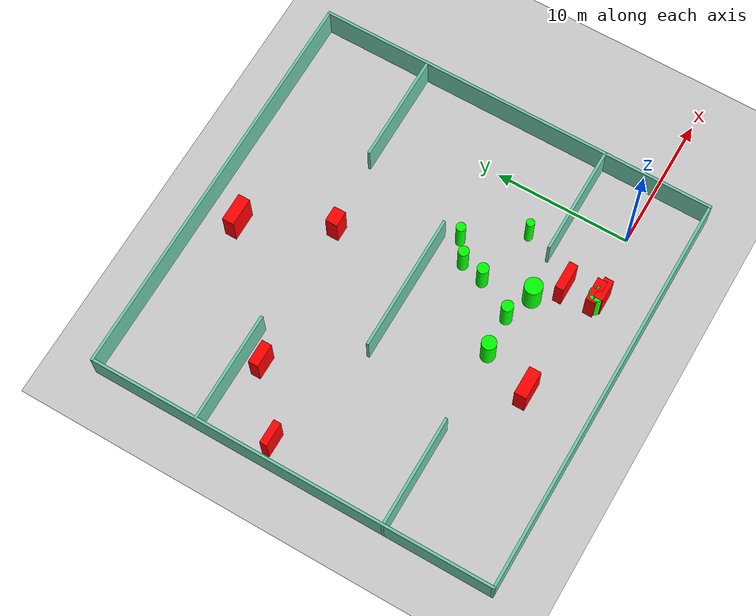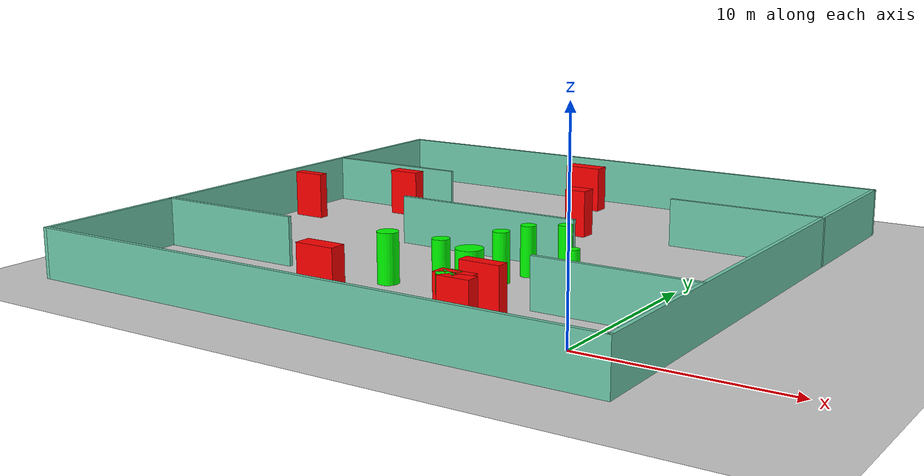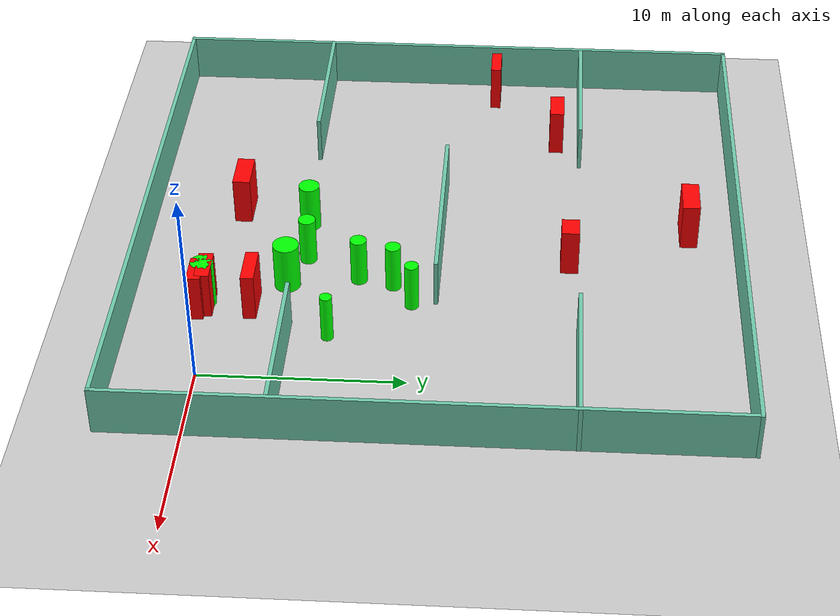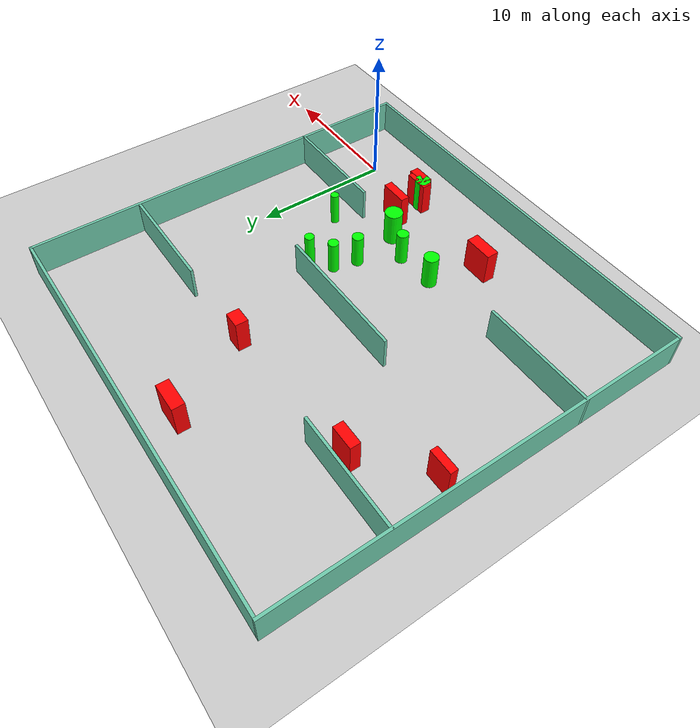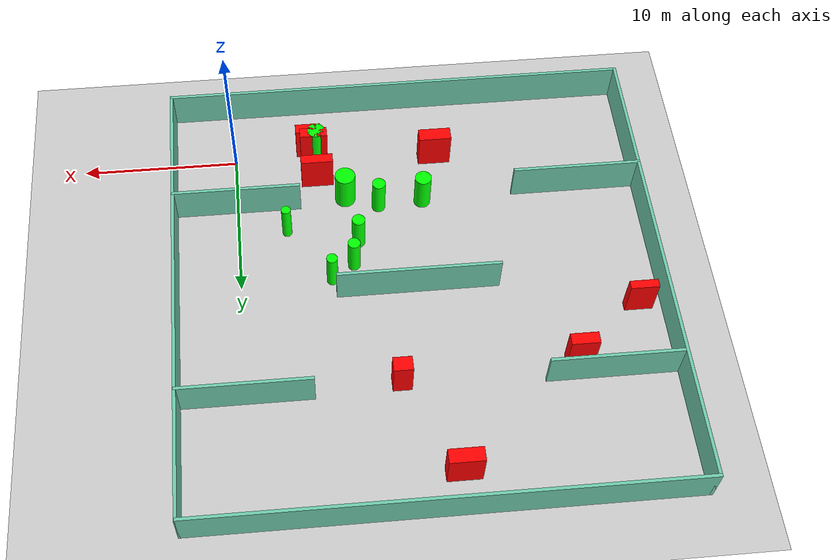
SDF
<sdf version="1.7">
 <world name="default">
  <light name="sun" type="directional">
   <pose>0 0 10 0 -0 0</pose>
   <diffuse>0.8 0.8 0.8 1</diffuse>
   <specular>0.2 0.2 0.2 1</specular>
   <attenuation>
    <range>1000</range>
    <constant>0.9</constant>
    <linear>0.01</linear>
    <quadratic>0.001</quadratic>
   </attenuation>
   <direction>-0.5 0.1 -0.9</direction>
   <spot><inner_angle>0</inner_angle><outer_angle>0</outer_angle><falloff>0</falloff></spot>
  </light>
  <model name="ground_plane">
   <static>1</static>
   <link name="link">
    <collision name="collision">
     <geometry><plane><normal>0 0 1</normal><size>100 100</size></plane></geometry>
     <surface>
      <contact><collide_bitmask>65535</collide_bitmask></contact>
      <friction><ode><mu>100</mu><mu2>50</mu2></ode></friction>
     </surface>
    </collision>
    <visual name="visual">
     <cast_shadows>0</cast_shadows>
     <geometry><plane><normal>0 0 1</normal><size>100 100</size></plane></geometry>
     <material>
      <script><uri>file://media/materials/scripts/gazebo.material</uri><name>Gazebo/Grey</name></script>
     </material>
    </visual>
   </link>
  </model>
  <gravity>0 0 -9.8</gravity>
  <magnetic_field>6e-06 2.3e-05 -4.2e-05</magnetic_field>
  <atmosphere type="adiabatic"/>
  <physics type="ode">
   <max_step_size>0.001</max_step_size>
   <real_time_factor>1</real_time_factor>
   <real_time_update_rate>1000</real_time_update_rate>
  </physics>
  <scene><ambient>0.4 0.4 0.4 1</ambient><background>0.7 0.7 0.7 1</background><shadows>1</shadows></scene>
  <spherical_coordinates>
   <surface_model>EARTH_WGS84</surface_model>
   <latitude_deg>0</latitude_deg>
   <longitude_deg>0</longitude_deg>
   <elevation>0</elevation>
   <heading_deg>0</heading_deg>
  </spherical_coordinates>
  <model name="my_base_walls">
   <link name="Wall_10">
    <collision name="Wall_10_Collision">
     <geometry><box><size>8.2 0.2 2.5</size></box></geometry>
     <pose>0 0 1.25 0 -0 0</pose>
    </collision>
    <visual name="Wall_10_Visual">
     <pose>0 0 1.25 0 -0 0</pose>
     <geometry><box><size>8.2 0.2 2.5</size></box></geometry>
     <material>
      <script><uri>file://media/materials/scripts/gazebo.material</uri><name>Gazebo/Grey</name></script>
      <ambient>0.435294 0.796078 0.67451 1</ambient>
     </material>
     <meta><layer>0</layer></meta>
    </visual>
    <pose>-11 -7 0 0 -0 0</pose>
   </link>
   <link name="Wall_12">
    <collision name="Wall_12_Collision">
     <geometry><box><size>8.2 0.2 2.5</size></box></geometry>
     <pose>0 0 1.25 0 -0 0</pose>
    </collision>
    <visual name="Wall_12_Visual">
     <pose>0 0 1.25 0 -0 0</pose>
     <geometry><box><size>8.2 0.2 2.5</size></box></geometry>
     <material>
      <script><uri>file://media/materials/scripts/gazebo.material</uri><name>Gazebo/Grey</name></script>
      <ambient>0.435294 0.796078 0.67451 1</ambient>
     </material>
     <meta><layer>0</layer></meta>
    </visual>
    <pose>-11 7 0 0 -0 0</pose>
   </link>
   <link name="Wall_14">
    <collision name="Wall_14_Collision">
     <geometry><box><size>8.2 0.2 2.5</size></box></geometry>
     <pose>0 0 1.25 0 -0 0</pose>
    </collision>
    <visual name="Wall_14_Visual">
     <pose>0 0 1.25 0 -0 0</pose>
     <geometry><box><size>8.2 0.2 2.5</size></box></geometry>
     <material>
      <script><uri>file://media/materials/scripts/gazebo.material</uri><name>Gazebo/Grey</name></script>
      <ambient>0.435294 0.796078 0.67451 1</ambient>
     </material>
     <meta><layer>0</layer></meta>
    </visual>
    <pose>11 7 0 0 -0 3.14159</pose>
   </link>
   <link name="Wall_16">
    <collision name="Wall_16_Collision">
     <geometry><box><size>10.2 0.2 2.5</size></box></geometry>
     <pose>0 0 1.25 0 -0 0</pose>
    </collision>
    <visual name="Wall_16_Visual">
     <pose>0 0 1.25 0 -0 0</pose>
     <geometry><box><size>10.2 0.2 2.5</size></box></geometry>
     <material>
      <script><uri>file://media/materials/scripts/gazebo.material</uri><name>Gazebo/Grey</name></script>
      <ambient>0.435294 0.796078 0.67451 1</ambient>
     </material>
     <meta><layer>0</layer></meta>
    </visual>
    <pose>0 0 0 0 -0 3.14159</pose>
   </link>
   <link name="Wall_2">
    <collision name="Wall_2_Collision">
     <geometry><box><size>30.2 0.2 2.5</size></box></geometry>
     <pose>0 0 1.25 0 -0 0</pose>
    </collision>
    <visual name="Wall_2_Visual">
     <pose>0 0 1.25 0 -0 0</pose>
     <geometry><box><size>30.2 0.2 2.5</size></box></geometry>
     <material>
      <script><uri>file://media/materials/scripts/gazebo.material</uri><name>Gazebo/Grey</name></script>
      <ambient>0.435294 0.796078 0.67451 1</ambient>
     </material>
     <meta><layer>0</layer></meta>
    </visual>
    <pose>0 -15 0 0 -0 3.14159</pose>
   </link>
   <link name="Wall_3">
    <collision name="Wall_3_Collision">
     <geometry><box><size>30.2 0.2 2.5</size></box></geometry>
     <pose>0 0 1.25 0 -0 0</pose>
    </collision>
    <visual name="Wall_3_Visual">
     <pose>0 0 1.25 0 -0 0</pose>
     <geometry><box><size>30.2 0.2 2.5</size></box></geometry>
     <material>
      <script><uri>file://media/materials/scripts/gazebo.material</uri><name>Gazebo/Grey</name></script>
      <ambient>0.435294 0.796078 0.67451 1</ambient>
     </material>
     <meta><layer>0</layer></meta>
    </visual>
    <pose>-15 0 0 0 -0 1.5708</pose>
   </link>
   <link name="Wall_4">
    <collision name="Wall_4_Collision">
     <geometry><box><size>30.2 0.2 2.5</size></box></geometry>
     <pose>0 0 1.25 0 -0 0</pose>
    </collision>
    <visual name="Wall_4_Visual">
     <pose>0 0 1.25 0 -0 0</pose>
     <geometry><box><size>30.2 0.2 2.5</size></box></geometry>
     <material>
      <script><uri>file://media/materials/scripts/gazebo.material</uri><name>Gazebo/Grey</name></script>
      <ambient>0.435294 0.796078 0.67451 1</ambient>
     </material>
     <meta><layer>0</layer></meta>
    </visual>
    <pose>0 15 0 0 -0 0</pose>
   </link>
   <link name="Wall_6">
    <collision name="Wall_6_Collision">
     <geometry><box><size>30.2 0.2 2.5</size></box></geometry>
     <pose>0 0 1.25 0 -0 0</pose>
    </collision>
    <visual name="Wall_6_Visual">
     <pose>0 0 1.25 0 -0 0</pose>
     <geometry><box><size>30.2 0.2 2.5</size></box></geometry>
     <material>
      <script><uri>file://media/materials/scripts/gazebo.material</uri><name>Gazebo/Grey</name></script>
      <ambient>0.435294 0.796078 0.67451 1</ambient>
     </material>
     <meta><layer>0</layer></meta>
    </visual>
    <pose>15 0 0 0 -0 1.5708</pose>
   </link>
   <link name="Wall_8">
    <collision name="Wall_8_Collision">
     <geometry><box><size>8.2 0.2 2.5</size></box></geometry>
     <pose>0 0 1.25 0 -0 0</pose>
    </collision>
    <visual name="Wall_8_Visual">
     <pose>0 0 1.25 0 -0 0</pose>
     <geometry><box><size>8.2 0.2 2.5</size></box></geometry>
     <material>
      <script><uri>file://media/materials/scripts/gazebo.material</uri><name>Gazebo/Grey</name></script>
      <ambient>0.435294 0.796078 0.67451 1</ambient>
     </material>
     <meta><layer>0</layer></meta>
    </visual>
    <pose>11 -7 0 0 -0 3.14159</pose>
   </link>
   <static>1</static>
   <pose>-11 11 0 0 -0 0</pose>
  </model>
  <model name="cylinder1">
   <static>1</static>
   <link name="link">
    <inertial>
     <mass>1</mass>
     <inertia><ixx>0.5</ixx><ixy>0</ixy><ixz>0</ixz><iyy>0.5</iyy><iyz>0</iyz><izz>1</izz></inertia>
    </inertial>
    <collision name="collision">
     <geometry><cylinder><radius>0.6483618482873639</radius><length>2.5</length></cylinder></geometry>
    </collision>
    <visual name="visual">
     <geometry><cylinder><radius>0.6483618482873639</radius><length>2.5</length></cylinder></geometry>
     <material>
      <ambient>0 1 0 1</ambient>
      <diffuse>0 1 0 1</diffuse>
      <specular>0.1 0.1 0.1 1</specular>
      <emissive>0 0 0 0</emissive>
     </material>
    </visual>
   </link>
   <pose>-7.032186113654991 3.545586968824119 1.25 0 0 0</pose>
  </model>
  <model name="cylinder2">
   <static>1</static>
   <link name="link">
    <inertial>
     <mass>1</mass>
     <inertia><ixx>0.5</ixx><ixy>0</ixy><ixz>0</ixz><iyy>0.5</iyy><iyz>0</iyz><izz>1</izz></inertia>
    </inertial>
    <collision name="collision">
     <geometry><cylinder><radius>0.4277646676338748</radius><length>2.5</length></cylinder></geometry>
    </collision>
    <visual name="visual">
     <geometry><cylinder><radius>0.4277646676338748</radius><length>2.5</length></cylinder></geometry>
     <material>
      <ambient>0 1 0 1</ambient>
      <diffuse>0 1 0 1</diffuse>
      <specular>0.1 0.1 0.1 1</specular>
      <emissive>0 0 0 0</emissive>
     </material>
    </visual>
   </link>
   <pose>-9.138433999210811 4.358889129627803 1.25 0 0 0</pose>
  </model>
  <model name="cylinder3">
   <static>1</static>
   <link name="link">
    <inertial>
     <mass>1</mass>
     <inertia><ixx>0.5</ixx><ixy>0</ixy><ixz>0</ixz><iyy>0.5</iyy><iyz>0</iyz><izz>1</izz></inertia>
    </inertial>
    <collision name="collision">
     <geometry><cylinder><radius>0.41382563143695394</radius><length>2.5</length></cylinder></geometry>
    </collision>
    <visual name="visual">
     <geometry><cylinder><radius>0.41382563143695394</radius><length>2.5</length></cylinder></geometry>
     <material>
      <ambient>0 1 0 1</ambient>
      <diffuse>0 1 0 1</diffuse>
      <specular>0.1 0.1 0.1 1</specular>
      <emissive>0 0 0 0</emissive>
     </material>
    </visual>
   </link>
   <pose>-7.60329394728371 7.069213149980831 1.25 0 0 0</pose>
  </model>
  <model name="cylinder4">
   <static>1</static>
   <link name="link">
    <inertial>
     <mass>1</mass>
     <inertia><ixx>0.5</ixx><ixy>0</ixy><ixz>0</ixz><iyy>0.5</iyy><iyz>0</iyz><izz>1</izz></inertia>
    </inertial>
    <collision name="collision">
     <geometry><cylinder><radius>0.38593892274602676</radius><length>2.5</length></cylinder></geometry>
    </collision>
    <visual name="visual">
     <geometry><cylinder><radius>0.38593892274602676</radius><length>2.5</length></cylinder></geometry>
     <material>
      <ambient>0 1 0 1</ambient>
      <diffuse>0 1 0 1</diffuse>
      <specular>0.1 0.1 0.1 1</specular>
      <emissive>0 0 0 0</emissive>
     </material>
    </visual>
   </link>
   <pose>-7.173091614113247 8.80729453335414 1.25 0 0 0</pose>
  </model>
  <model name="cylinder5">
   <static>1</static>
   <link name="link">
    <inertial>
     <mass>1</mass>
     <inertia><ixx>0.5</ixx><ixy>0</ixy><ixz>0</ixz><iyy>0.5</iyy><iyz>0</iyz><izz>1</izz></inertia>
    </inertial>
    <collision name="collision">
     <geometry><cylinder><radius>0.5276853958130514</radius><length>2.5</length></cylinder></geometry>
    </collision>
    <visual name="visual">
     <geometry><cylinder><radius>0.5276853958130514</radius><length>2.5</length></cylinder></geometry>
     <material>
      <ambient>0 1 0 1</ambient>
      <diffuse>0 1 0 1</diffuse>
      <specular>0.1 0.1 0.1 1</specular>
      <emissive>0 0 0 0</emissive>
     </material>
    </visual>
   </link>
   <pose>-12.013312053575762 4.146014832261969 1.25 0 0 0</pose>
  </model>
  <model name="cylinder6">
   <static>1</static>
   <link name="link">
    <inertial>
     <mass>1</mass>
     <inertia><ixx>0.5</ixx><ixy>0</ixy><ixz>0</ixz><iyy>0.5</iyy><iyz>0</iyz><izz>1</izz></inertia>
    </inertial>
    <collision name="collision">
     <geometry><cylinder><radius>0.345755966108301</radius><length>2.5</length></cylinder></geometry>
    </collision>
    <visual name="visual">
     <geometry><cylinder><radius>0.345755966108301</radius><length>2.5</length></cylinder></geometry>
     <material>
      <ambient>0 1 0 1</ambient>
      <diffuse>0 1 0 1</diffuse>
      <specular>0.1 0.1 0.1 1</specular>
      <emissive>0 0 0 0</emissive>
     </material>
    </visual>
   </link>
   <pose>-5.725957438023681 9.823209506173406 1.25 0 0 0</pose>
  </model>
  <model name="cylinder7">
   <static>1</static>
   <link name="link">
    <inertial>
     <mass>1</mass>
     <inertia><ixx>0.5</ixx><ixy>0</ixy><ixz>0</ixz><iyy>0.5</iyy><iyz>0</iyz><izz>1</izz></inertia>
    </inertial>
    <collision name="collision">
     <geometry><cylinder><radius>0.30111855187231834</radius><length>2.5</length></cylinder></geometry>
    </collision>
    <visual name="visual">
     <geometry><cylinder><radius>0.30111855187231834</radius><length>2.5</length></cylinder></geometry>
     <material>
      <ambient>0 1 0 1</ambient>
      <diffuse>0 1 0 1</diffuse>
      <specular>0.1 0.1 0.1 1</specular>
      <emissive>0 0 0 0</emissive>
     </material>
    </visual>
   </link>
   <pose>-3.1039053392761353 5.930566492357592 1.25 0 0 0</pose>
  </model>
  <model name="cylinder8">
   <static>1</static>
   <link name="link">
    <inertial>
     <mass>1</mass>
     <inertia><ixx>0.5</ixx><ixy>0</ixy><ixz>0</ixz><iyy>0.5</iyy><iyz>0</iyz><izz>1</izz></inertia>
    </inertial>
    <collision name="collision">
     <geometry><cylinder><radius>0.5674701827617236</radius><length>2.5</length></cylinder></geometry>
    </collision>
    <visual name="visual">
     <geometry><cylinder><radius>0.5674701827617236</radius><length>2.5</length></cylinder></geometry>
     <material>
      <ambient>0 1 0 1</ambient>
      <diffuse>0 1 0 1</diffuse>
      <specular>0.1 0.1 0.1 1</specular>
      <emissive>0 0 0 0</emissive>
     </material>
    </visual>
   </link>
   <pose>-5.426285387211063 -0.34963584662079095 1.25 0 0 0</pose>
  </model>
  <model name="box1">
   <static>1</static>
   <link name="link">
    <inertial>
     <mass>1</mass>
     <inertia><ixx>0.083</ixx><ixy>0</ixy><ixz>0</ixz><iyy>0.083</iyy><iyz>0</iyz><izz>0.083</izz></inertia>
    </inertial>
    <collision name="collision">
     <geometry><box><size>1.7298385164994765 0.7341490961737658 2.5</size></box></geometry>
    </collision>
    <visual name="visual">
     <geometry><box><size>1.7298385164994765 0.7341490961737658 2.5</size></box></geometry>
     <material>
      <ambient>1 0 0 1</ambient>
      <diffuse>1 0 0 1</diffuse>
      <specular>0.1 0.1 0.1 1</specular>
      <emissive>0 0 0 0</emissive>
     </material>
    </visual>
    <sensor name="my_contact" type="contact">
     <contact><collision>box_collision</collision><topic>__default_topic__</topic></contact>
    </sensor>
   </link>
   <pose>-20.175378955881747 16.744653255164145 1.25 0 0 0</pose>
  </model>
  <model name="box2">
   <static>1</static>
   <link name="link">
    <inertial>
     <mass>1</mass>
     <inertia><ixx>0.083</ixx><ixy>0</ixy><ixz>0</ixz><iyy>0.083</iyy><iyz>0</iyz><izz>0.083</izz></inertia>
    </inertial>
    <collision name="collision">
     <geometry><box><size>2.098807400833407 0.8753891502442256 2.5</size></box></geometry>
    </collision>
    <visual name="visual">
     <geometry><box><size>2.098807400833407 0.8753891502442256 2.5</size></box></geometry>
     <material>
      <ambient>1 0 0 1</ambient>
      <diffuse>1 0 0 1</diffuse>
      <specular>0.1 0.1 0.1 1</specular>
      <emissive>0 0 0 0</emissive>
     </material>
    </visual>
    <sensor name="my_contact" type="contact">
     <contact><collision>box_collision</collision><topic>__default_topic__</topic></contact>
    </sensor>
   </link>
   <pose>-12.223091775312184 23.588120711840055 1.25 0 0 0</pose>
  </model>
  <model name="box3">
   <static>1</static>
   <link name="link">
    <inertial>
     <mass>1</mass>
     <inertia><ixx>0.083</ixx><ixy>0</ixy><ixz>0</ixz><iyy>0.083</iyy><iyz>0</iyz><izz>0.083</izz></inertia>
    </inertial>
    <collision name="collision">
     <geometry><box><size>1.7573103101466765 0.5406253443591471 2.5</size></box></geometry>
    </collision>
    <visual name="visual">
     <geometry><box><size>1.7573103101466765 0.5406253443591471 2.5</size></box></geometry>
     <material>
      <ambient>1 0 0 1</ambient>
      <diffuse>1 0 0 1</diffuse>
      <specular>0.1 0.1 0.1 1</specular>
      <emissive>0 0 0 0</emissive>
     </material>
    </visual>
    <sensor name="my_contact" type="contact">
     <contact><collision>box_collision</collision><topic>__default_topic__</topic></contact>
    </sensor>
   </link>
   <pose>-24.44012871539649 13.307241612185575 1.25 0 0 0</pose>
  </model>
  <model name="box4">
   <static>1</static>
   <link name="link">
    <inertial>
     <mass>1</mass>
     <inertia><ixx>0.083</ixx><ixy>0</ixy><ixz>0</ixz><iyy>0.083</iyy><iyz>0</iyz><izz>0.083</izz></inertia>
    </inertial>
    <collision name="collision">
     <geometry><box><size>2.0802898523711244 0.8824985572941212 2.5</size></box></geometry>
    </collision>
    <visual name="visual">
     <geometry><box><size>2.0802898523711244 0.8824985572941212 2.5</size></box></geometry>
     <material>
      <ambient>1 0 0 1</ambient>
      <diffuse>1 0 0 1</diffuse>
      <specular>0.1 0.1 0.1 1</specular>
      <emissive>0 0 0 0</emissive>
     </material>
    </visual>
    <sensor name="my_contact" type="contact">
     <contact><collision>box_collision</collision><topic>__default_topic__</topic></contact>
    </sensor>
   </link>
   <pose>-13.162017450596027 0.633263545916309 1.25 0 0 0</pose>
  </model>
  <model name="box5">
   <static>1</static>
   <link name="link">
    <inertial>
     <mass>1</mass>
     <inertia><ixx>0.083</ixx><ixy>0</ixy><ixz>0</ixz><iyy>0.083</iyy><iyz>0</iyz><izz>0.083</izz></inertia>
    </inertial>
    <collision name="collision">
     <geometry><box><size>1.7784927974508662 0.7211401465758651 2.5</size></box></geometry>
    </collision>
    <visual name="visual">
     <geometry><box><size>1.7784927974508662 0.7211401465758651 2.5</size></box></geometry>
     <material>
      <ambient>1 0 0 1</ambient>
      <diffuse>1 0 0 1</diffuse>
      <specular>0.1 0.1 0.1 1</specular>
      <emissive>0 0 0 0</emissive>
     </material>
    </visual>
    <sensor name="my_contact" type="contact">
     <contact><collision>box_collision</collision><topic>__default_topic__</topic></contact>
    </sensor>
   </link>
   <pose>-5.235185315468069 -0.2166321957077746 1.25 0 0 0</pose>
  </model>
  <model name="box6">
   <static>1</static>
   <link name="link">
    <inertial>
     <mass>1</mass>
     <inertia><ixx>0.083</ixx><ixy>0</ixy><ixz>0</ixz><iyy>0.083</iyy><iyz>0</iyz><izz>0.083</izz></inertia>
    </inertial>
    <collision name="collision">
     <geometry><box><size>1.1729094357368304 0.9050282128992178 2.5</size></box></geometry>
    </collision>
    <visual name="visual">
     <geometry><box><size>1.1729094357368304 0.9050282128992178 2.5</size></box></geometry>
     <material>
      <ambient>1 0 0 1</ambient>
      <diffuse>1 0 0 1</diffuse>
      <specular>0.1 0.1 0.1 1</specular>
      <emissive>0 0 0 0</emissive>
     </material>
    </visual>
    <sensor name="my_contact" type="contact">
     <contact><collision>box_collision</collision><topic>__default_topic__</topic></contact>
    </sensor>
   </link>
   <pose>-9.293646977590441 17.517307820331865 1.25 0 0 0</pose>
  </model>
  <model name="box7">
   <static>1</static>
   <link name="link">
    <inertial>
     <mass>1</mass>
     <inertia><ixx>0.083</ixx><ixy>0</ixy><ixz>0</ixz><iyy>0.083</iyy><iyz>0</iyz><izz>0.083</izz></inertia>
    </inertial>
    <collision name="collision">
     <geometry><box><size>2.0684118809965444 0.6419658305503397 2.5</size></box></geometry>
    </collision>
    <visual name="visual">
     <geometry><box><size>2.0684118809965444 0.6419658305503397 2.5</size></box></geometry>
     <material>
      <ambient>1 0 0 1</ambient>
      <diffuse>1 0 0 1</diffuse>
      <specular>0.1 0.1 0.1 1</specular>
      <emissive>0 0 0 0</emissive>
     </material>
    </visual>
    <sensor name="my_contact" type="contact">
     <contact><collision>box_collision</collision><topic>__default_topic__</topic></contact>
    </sensor>
   </link>
   <pose>-5.313083824794873 1.9987620556732475 1.25 0 0 0</pose>
  </model>
  <model name="box8">
   <static>1</static>
   <link name="link">
    <inertial>
     <mass>1</mass>
     <inertia><ixx>0.083</ixx><ixy>0</ixy><ixz>0</ixz><iyy>0.083</iyy><iyz>0</iyz><izz>0.083</izz></inertia>
    </inertial>
    <collision name="collision">
     <geometry><box><size>1.617836209262477 0.6782788863600301 2.5</size></box></geometry>
    </collision>
    <visual name="visual">
     <geometry><box><size>1.617836209262477 0.6782788863600301 2.5</size></box></geometry>
     <material>
      <ambient>1 0 0 1</ambient>
      <diffuse>1 0 0 1</diffuse>
      <specular>0.1 0.1 0.1 1</specular>
      <emissive>0 0 0 0</emissive>
     </material>
    </visual>
    <sensor name="my_contact" type="contact">
     <contact><collision>box_collision</collision><topic>__default_topic__</topic></contact>
    </sensor>
   </link>
   <pose>-4.889574240132083 -0.5781893406663228 1.25 0 0 0</pose>
  </model>
 </world>
</sdf>
